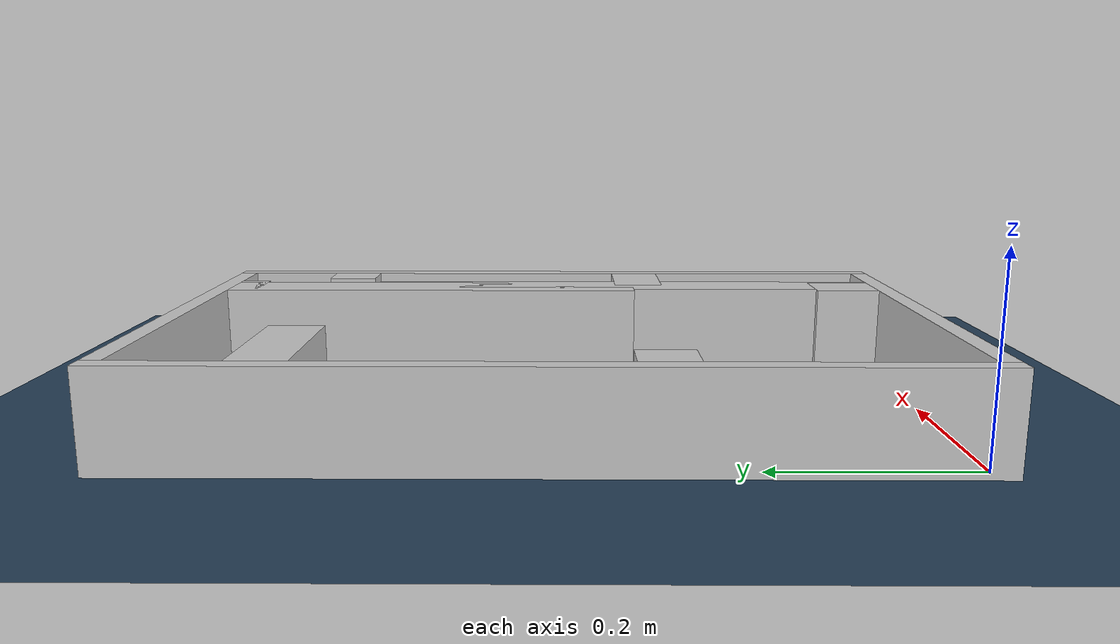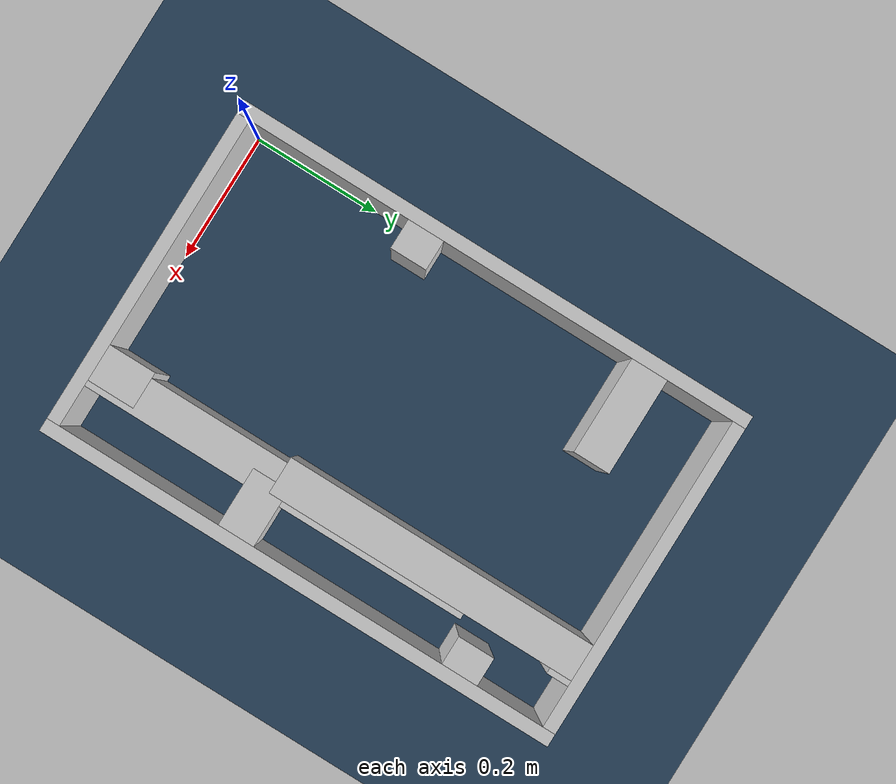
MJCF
<?xml version="1.0" ?>
<mujoco model="generated_real_template">
  <compiler angle="degree"/>
  <option timestep="0.002" integrator="implicitfast" iterations="100" cone="elliptic"/>
  <default>
    <geom density="1"/>
  </default>
  <asset>
    <texture builtin="gradient" height="3072" rgb1="0.3 0.5 0.7" rgb2="0 0 0" type="skybox" width="512"/>
    <texture builtin="checker" height="300" mark="edge" markrgb="0.8 0.8 0.8" name="groundplane" rgb1="0.2 0.3 0.4" rgb2="0.1 0.2 0.3" type="2d" width="300"/>
    <material name="groundplane" reflectance="0.2" texrepeat="5 5" texture="groundplane" texuniform="true"/>
  </asset>
  <worldbody>
    <light dir="0 0 -1" directional="true" pos="0 0 1.5"/>
    <geom name="floor" type="plane" condim="4" friction="0.5 0.005 0.001" material="groundplane" size="0 0 0.05"/>
    <body name="walls">
      <geom name="wall_boundary_left" type="box" condim="4" friction="1.0 0.005 0.0001" rgba="0.8 0.8 0.8 1" pos="-0.010000 0.387500 0.050000" euler="0 0 0.000000" size="0.010000 0.407500 0.050000"/>
      <geom name="wall_boundary_right" type="box" condim="4" friction="1.0 0.005 0.0001" rgba="0.8 0.8 0.8 1" pos="0.500000 0.387500 0.050000" euler="0 0 0.000000" size="0.010000 0.407500 0.050000"/>
      <geom name="wall_boundary_bottom" type="box" condim="4" friction="1.0 0.005 0.0001" rgba="0.8 0.8 0.8 1" pos="0.245000 -0.010000 0.050000" euler="0 0 0.000000" size="0.245000 0.010000 0.050000"/>
      <geom name="wall_boundary_top" type="box" condim="4" friction="1.0 0.005 0.0001" rgba="0.8 0.8 0.8 1" pos="0.245000 0.785000 0.050000" euler="0 0 0.000000" size="0.245000 0.010000 0.050000"/>
      <geom name="wall_inner_1_1" type="box" condim="4" friction="1.0 0.005 0.0001" rgba="0.8 0.8 0.8 1" pos="0.388039 0.036302 0.050000" euler="0 0 90.000000" size="0.036302 0.028500 0.050000"/>
      <geom name="wall_inner_1_2" type="box" condim="4" friction="1.0 0.005 0.0001" rgba="0.8 0.8 0.8 1" pos="0.388039 0.532632 0.050000" euler="0 0 90.000000" size="0.242368 0.028500 0.050000"/>
      <geom name="wall_inner_2_1" type="box" condim="4" friction="1.0 0.005 0.0001" rgba="0.8 0.8 0.8 1" pos="0.023090 0.283025 0.050000" euler="0 0 0.000000" size="0.023090 0.028500 0.050000"/>
      <geom name="wall_inner_2_2" type="box" condim="4" friction="1.0 0.005 0.0001" rgba="0.8 0.8 0.8 1" pos="0.444546 0.283025 0.050000" euler="0 0 0.000000" size="0.045454 0.028500 0.050000"/>
      <geom name="wall_inner_3_1" type="box" condim="4" friction="1.0 0.005 0.0001" rgba="0.8 0.8 0.8 1" pos="0.396906 0.301249 0.050000" euler="0 0 90.000000" size="0.301249 0.028500 0.050000"/>
      <geom name="wall_inner_3_2" type="box" condim="4" friction="1.0 0.005 0.0001" rgba="0.8 0.8 0.8 1" pos="0.396906 0.757954 0.050000" euler="0 0 90.000000" size="0.017046 0.028500 0.050000"/>
      <geom name="wall_inner_4_1" type="box" condim="4" friction="1.0 0.005 0.0001" rgba="0.8 0.8 0.8 1" pos="0.075038 0.641487 0.050000" euler="0 0 0.000000" size="0.075038 0.028500 0.050000"/>
      <geom name="wall_inner_4_2" type="box" condim="4" friction="1.0 0.005 0.0001" rgba="0.8 0.8 0.8 1" pos="0.467893 0.641487 0.050000" euler="0 0 0.000000" size="0.022107 0.028500 0.050000"/>
    </body>
  </worldbody>
</mujoco>
